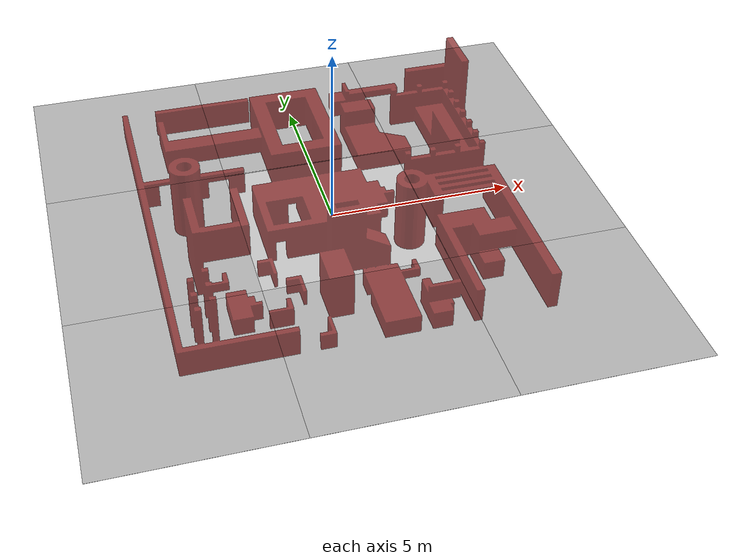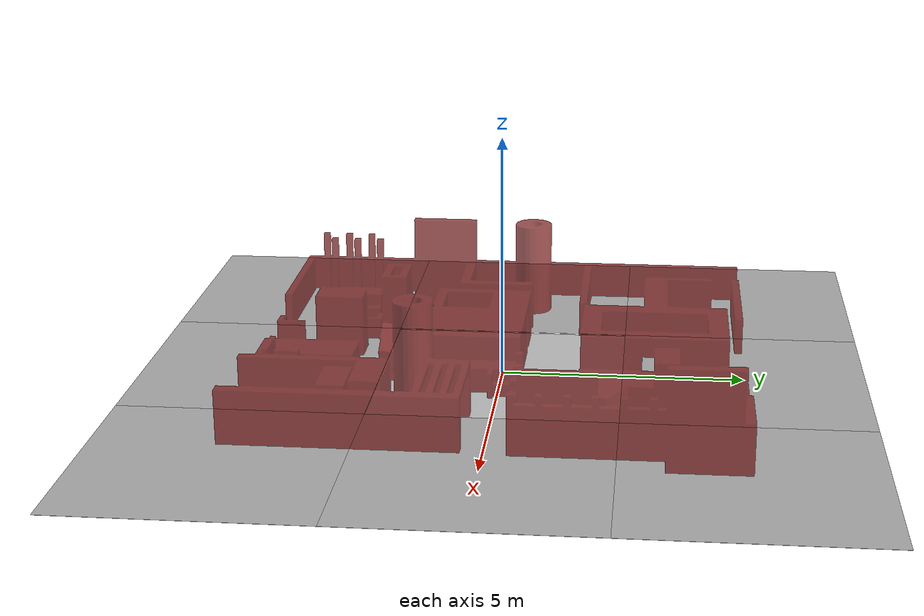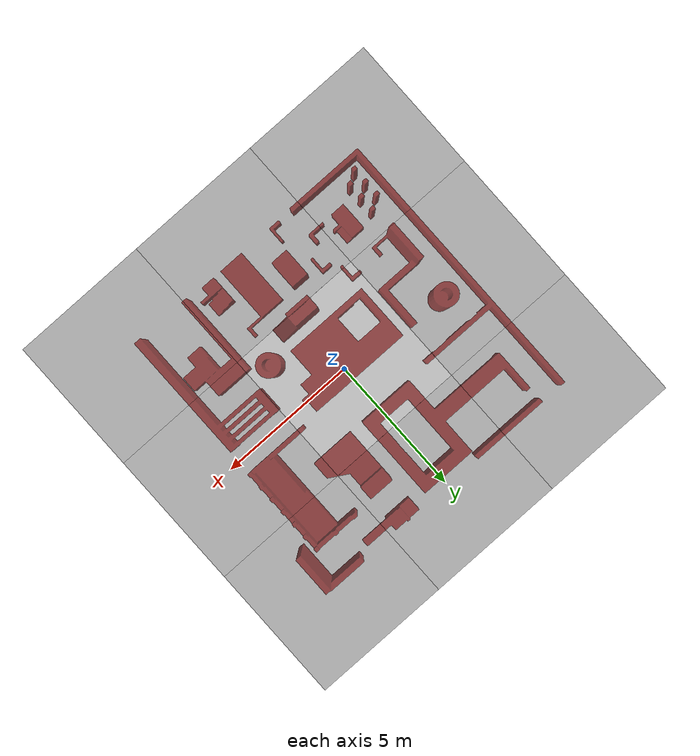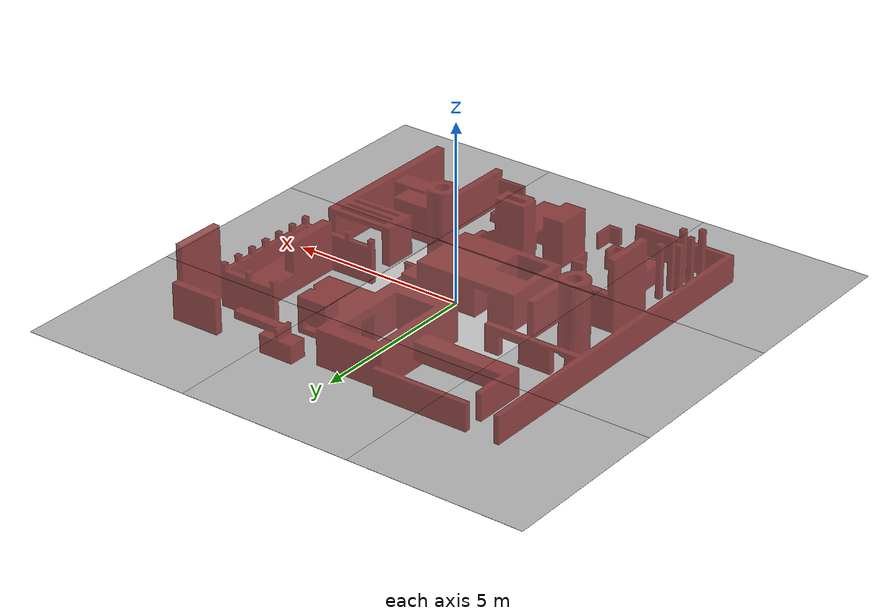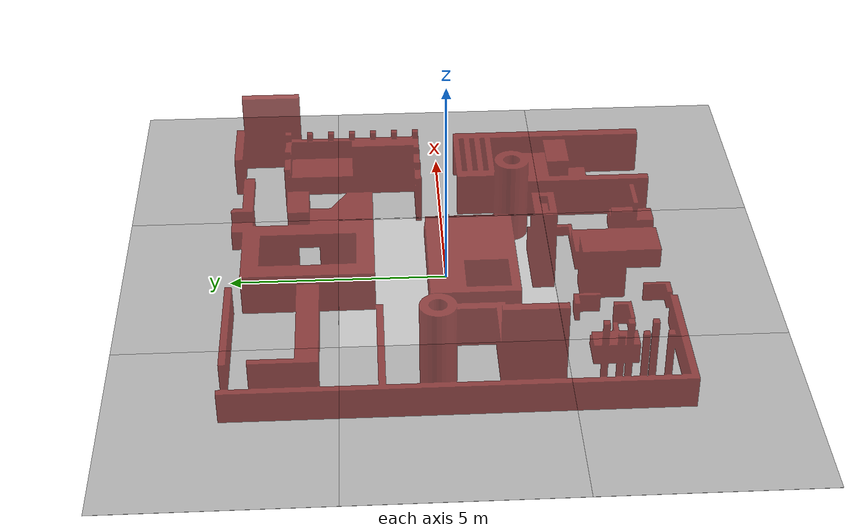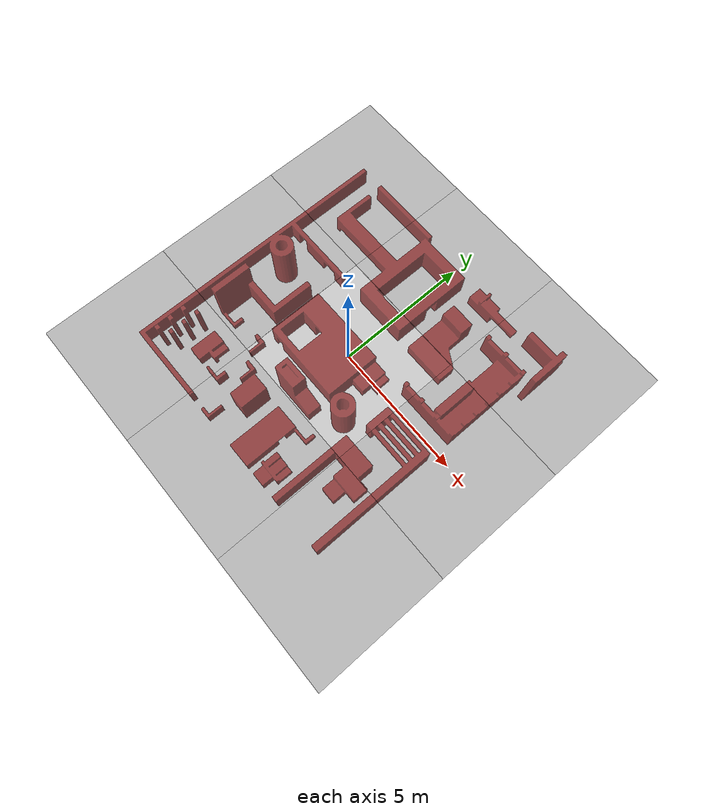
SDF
<?xml version="1.0" ?>
<sdf version="1.9">
  <!-- We use a custom world for the rrbot so that the camera angle is launched correctly -->

  <world name="default">

    <scene>
      <sky>
        <clouds>
          <speed>0</speed>
        </clouds>
      </sky>
    </scene>

    <include>
      <uri>model://plane</uri>
    </include>

    <!-- Global light source -->
    <include>
      <uri>model://sun</uri>
    </include>

    <include>
      <pose>-5 -5 0 0 0 0</pose>
      <uri>model://robotics_gym</uri>
    </include>

  </world>
</sdf>

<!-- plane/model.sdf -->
<sdf version='1.4'>
    <model name='plane'>
        <static>true</static>
        <link name='link'>

            <collision name='collision'>
                <geometry>
                    <plane>
                        <normal>0 0 1</normal>
                        <size>15 15</size>
                    </plane>
                </geometry>
                <surface>
                    <friction>
                        <ode>
                            <mu>100</mu>
                            <mu2>50</mu2>
                        </ode>
                    </friction>
                </surface>
            </collision>

            <visual name='visual_0'>
                <pose>0 0 0 0 0 0</pose>
                <cast_shadows>false</cast_shadows>
                <geometry>
                    <plane>
                        <normal>0 0 1</normal>
                        <size>5 5</size>
                    </plane>
                </geometry>
                <material>
                    <script>
                        <uri>model://plane/materials/scripts</uri>
                        <uri>model://plane/materials/textures</uri>
                        <name>vrc/pavement</name>
                    </script>
                </material>
            </visual>

            <visual name='visual_1'>
                <pose>0 5 0 0 0 0</pose>
                <cast_shadows>false</cast_shadows>
                <geometry>
                    <plane>
                        <normal>0 0 1</normal>
                        <size>5 5</size>
                    </plane>
                </geometry>
                <material>
                    <script>
                        <uri>model://plane/materials/scripts</uri>
                        <uri>model://plane/materials/textures</uri>
                        <name>vrc/pavement</name>
                    </script>
                </material>
            </visual>

            <visual name='visual_2'>
                <pose>0 -5 0 0 0 0</pose>
                <cast_shadows>false</cast_shadows>
                <geometry>
                    <plane>
                        <normal>0 0 1</normal>
                        <size>5 5</size>
                    </plane>
                </geometry>
                <material>
                    <script>
                        <uri>model://plane/materials/scripts</uri>
                        <uri>model://plane/materials/textures</uri>
                        <name>vrc/pavement</name>
                    </script>
                </material>
            </visual>

            <visual name='visual_3'>
                <pose>-5 -5 0 0 0 0</pose>
                <cast_shadows>false</cast_shadows>
                <geometry>
                    <plane>
                        <normal>0 0 1</normal>
                        <size>5 5</size>
                    </plane>
                </geometry>
                <material>
                    <script>
                        <uri>model://plane/materials/scripts</uri>
                        <uri>model://plane/materials/textures</uri>
                        <name>vrc/pavement</name>
                    </script>
                </material>
            </visual>

            <visual name='visual_4'>
                <pose>-5 0 0 0 0 0</pose>
                <cast_shadows>false</cast_shadows>
                <geometry>
                    <plane>
                        <normal>0 0 1</normal>
                        <size>5 5</size>
                    </plane>
                </geometry>
                <material>
                    <script>
                        <uri>model://plane/materials/scripts</uri>
                        <uri>model://plane/materials/textures</uri>
                        <name>vrc/pavement</name>
                    </script>
                </material>
            </visual>

            <visual name='visual_5'>
                <pose>-5 5 0 0 0 0</pose>
                <cast_shadows>false</cast_shadows>
                <geometry>
                    <plane>
                        <normal>0 0 1</normal>
                        <size>5 5</size>
                    </plane>
                </geometry>
                <material>
                    <script>
                        <uri>model://plane/materials/scripts</uri>
                        <uri>model://plane/materials/textures</uri>
                        <name>vrc/pavement</name>
                    </script>
                </material>
            </visual>

            <visual name='visual_6'>
                <pose>5 -5 0 0 0 0</pose>
                <cast_shadows>false</cast_shadows>
                <geometry>
                    <plane>
                        <normal>0 0 1</normal>
                        <size>5 5</size>
                    </plane>
                </geometry>
                <material>
                    <script>
                        <uri>model://plane/materials/scripts</uri>
                        <uri>model://plane/materials/textures</uri>
                        <name>vrc/pavement</name>
                    </script>
                </material>
            </visual>

            <visual name='visual_7'>
                <pose>5 0 0 0 0 0</pose>
                <cast_shadows>false</cast_shadows>
                <geometry>
                    <plane>
                        <normal>0 0 1</normal>
                        <size>5 5</size>
                    </plane>
                </geometry>
                <material>
                    <script>
                        <uri>model://plane/materials/scripts</uri>
                        <uri>model://plane/materials/textures</uri>
                        <name>vrc/pavement</name>
                    </script>
                </material>
            </visual>

            <visual name='visual_8'>
                <pose>5 5 0 0 0 0</pose>
                <cast_shadows>false</cast_shadows>
                <geometry>
                    <plane>
                        <normal>0 0 1</normal>
                        <size>5 5</size>
                    </plane>
                </geometry>
                <material>
                    <script>
                        <uri>model://plane/materials/scripts</uri>
                        <uri>model://plane/materials/textures</uri>
                        <name>vrc/pavement</name>
                    </script>
                </material>
            </visual>

        </link>
    </model>
</sdf>

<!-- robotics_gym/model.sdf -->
<sdf version="1.6">
    <model name="robotics_gym">
        <static>true</static>
        <link name="base_link">
            <collision name="collision">
                <geometry>
                    <mesh>
                        <uri>meshes/my_robotics_gym.dae</uri>
                    </mesh>
                </geometry>
            </collision>
            <visual name="visual">
                <geometry>
                    <mesh>
                        <uri>meshes/my_robotics_gym.dae</uri>
                    </mesh>
                </geometry>
                <material>
                    <ambient>0.56 0.15 0.15 0.77</ambient>
                    <ambient>0.56 0.15 0.15 0.77</ambient>
                    <ambient>0.56 0.15 0.15 0.77</ambient>
                </material>
            </visual>
        </link>
    </model>
</sdf>
